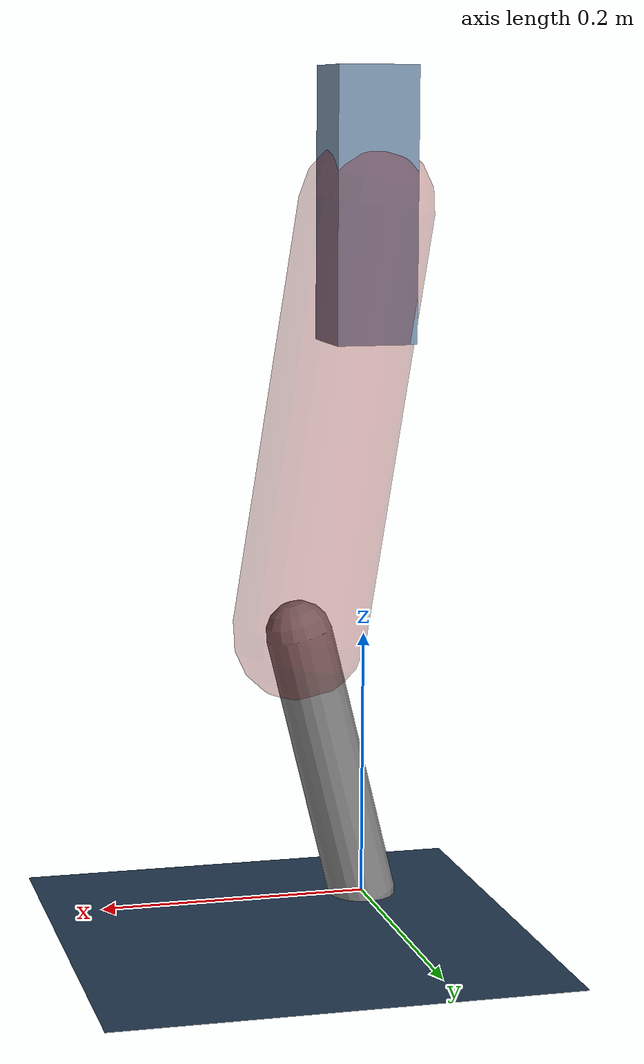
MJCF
<mujoco model="Hopper2D">
	<compiler inertiafromgeom="true" angle="radian" />
	<option timestep="0.001" integrator="implicit" cone="elliptic" solver="Newton" tolerance="1e-10" />

	<default>
		<geom contype="1" conaffinity="1" condim="3" friction="2 0.005 0.0001" solref="0.005 1" />
		<joint limited="true" damping="0.1" />
	</default>

	<asset>
		<texture name="skybox" type="skybox" builtin="gradient" rgb1=".4 .6 .8" rgb2="0 0 0" width="800" height="800" />
		<texture name="grid" type="2d" builtin="checker" rgb1=".1 .2 .3" rgb2=".2 .3 .4" width="300" height="300" mark="edge" markrgb=".2 .3 .4" />
		<material name="ground" texture="grid" texrepeat="1 1" texuniform="true" reflectance="0.1" />
		<material name="leg" rgba="0.5 0.6 0.7 1" />
	</asset>

	<worldbody>

		<geom name="floor" type="plane" size="5 5 0.25" material="ground" />

		<light directional="false" diffuse="0.8 0.8 0.8" specular="0.3 0.3 0.3" pos="0 0 2" dir="0 0 -1" />
		<light mode="targetbodycom" target="base" directional="false" diffuse="0.8 0.8 0.8" specular="0.3 0.3 0.3" pos="0 0 2" dir="0 0 -1" />

		<camera name="fixed" pos="0 -2 1" xyaxes="1 0 0 0 0 1" />
		<camera name="tracking" mode="trackcom" pos="0 -3 1" />

		<body name="root" pos="0 0 0.5182275524481978">
			<joint name="slide_x" type="slide" axis="1 0 0" range="-100 100" />
			<joint name="slide_z" type="slide" axis="0 0 1" range="0 10" />

			<body name="base" pos="0 0 0">
				<geom name="torso" type="box" size="0.03 0.03 0.1" mass="2.2329999999999997" material="leg" />

				<body name="link1" pos="0 0 0" euler="0 1.4141416744045006 0">
					<joint type="hinge" axis="0 -1 0" pos="0 0 0" name="hinge1" limited="true" range="-3.14 3.14" stiffness="0" damping="0.1" />
					<geom name="thigh" type="capsule" fromto="0 0 0 0.32009839814383784 0 0" size="0.05" rgba="0.5 0 0 0.3" mass="1.043475514802746" />

					<body name="link2" pos="0.32009839814383784 0 0" euler="0 0.3989663549524515 0">
						<joint type="hinge" axis="0 -1 0" pos="0 0 0" name="hinge2" limited="true" range="-3.14 3.14" stiffness="0" damping="0.1" />
						<geom name="shank" type="capsule" fromto="0 0 0 0.20812915430436 0 0" size="0.025" mass="0.407716238873924" />

					</body>
				</body>
			</body>
		</body>
	</worldbody>

	<actuator>
		<motor name="torque1" joint="hinge1" ctrlrange="-64.35723956819052 64.35723956819052" ctrllimited="true" gear="1" />
		<motor name="torque2" joint="hinge2" ctrlrange="-98.10631512034028 98.10631512034028" ctrllimited="true" gear="1" />
	</actuator>
</mujoco>
